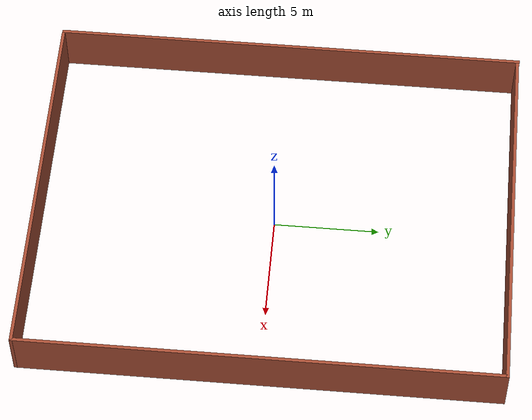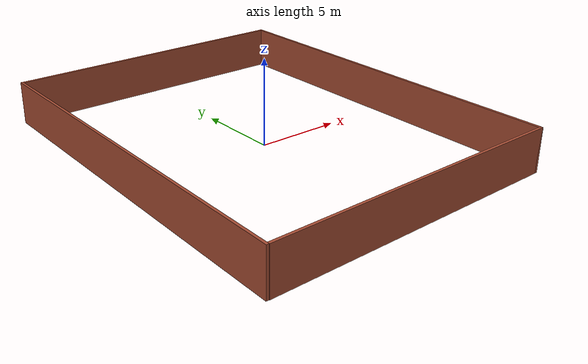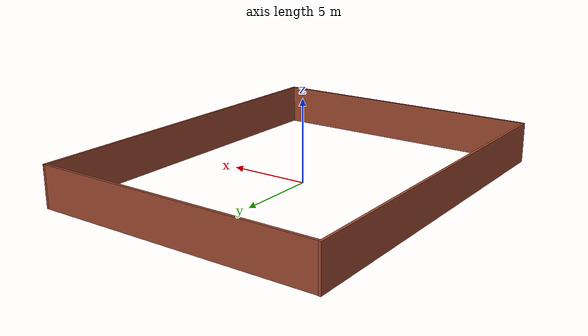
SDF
<?xml version='1.0'?>
<sdf version='1.6'>
  <model name='open_hall'>
    <link name='Wall_10'>
      <pose frame=''>8.675 0 0 0 0 -1.5708</pose>
      <self_collide>0</self_collide>
      <enable_wind>0</enable_wind>
      <kinematic>0</kinematic>
      <visual name='Wall_10_Visual'>
        <pose frame=''>0 0 1.25 0 -0 0</pose>
        <geometry>
          <box>
            <size>22.5 0.15 2.5</size>
          </box>
        </geometry>
        <material>
          <script>
            <uri>file://media/materials/scripts/gazebo.material</uri>
            <name>Gazebo/Bricks</name>
          </script>
          <ambient>1 1 1 1</ambient>
        </material>
        <meta>
          <layer>0</layer>
        </meta>
        <transparency>0</transparency>
        <cast_shadows>1</cast_shadows>
      </visual>
      <collision name='Wall_10_Collision'>
        <laser_retro>0</laser_retro>
        <max_contacts>10</max_contacts>
        <pose frame=''>0 0 1.25 0 -0 0</pose>
        <geometry>
          <box>
            <size>22.5 0.15 2.5</size>
          </box>
        </geometry>
        <surface>
          <friction>
            <ode>
              <mu>1</mu>
              <mu2>1</mu2>
              <fdir1>0 0 0</fdir1>
              <slip1>0</slip1>
              <slip2>0</slip2>
            </ode>
            <torsional>
              <coefficient>1</coefficient>
              <patch_radius>0</patch_radius>
              <surface_radius>0</surface_radius>
              <use_patch_radius>1</use_patch_radius>
              <ode>
                <slip>0</slip>
              </ode>
            </torsional>
          </friction>
          <bounce>
            <restitution_coefficient>0</restitution_coefficient>
            <threshold>1e+06</threshold>
          </bounce>
          <contact>
            <collide_without_contact>0</collide_without_contact>
            <collide_without_contact_bitmask>1</collide_without_contact_bitmask>
            <collide_bitmask>1</collide_bitmask>
            <ode>
              <soft_cfm>0</soft_cfm>
              <soft_erp>0.2</soft_erp>
              <kp>1e+13</kp>
              <kd>1</kd>
              <max_vel>0.01</max_vel>
              <min_depth>0</min_depth>
            </ode>
            <bullet>
              <split_impulse>1</split_impulse>
              <split_impulse_penetration_threshold>-0.01</split_impulse_penetration_threshold>
              <soft_cfm>0</soft_cfm>
              <soft_erp>0.2</soft_erp>
              <kp>1e+13</kp>
              <kd>1</kd>
            </bullet>
          </contact>
        </surface>
      </collision>
    </link>
    <link name='Wall_3'>
      <pose frame=''>0 -11.175 0 0 -0 0</pose>
      <self_collide>0</self_collide>
      <enable_wind>0</enable_wind>
      <kinematic>0</kinematic>
      <visual name='Wall_3_Visual'>
        <pose frame=''>0 0 1.25 0 -0 0</pose>
        <geometry>
          <box>
            <size>17.5 0.15 2.5</size>
          </box>
        </geometry>
        <material>
          <script>
            <uri>file://media/materials/scripts/gazebo.material</uri>
            <name>Gazebo/Bricks</name>
          </script>
          <ambient>1 1 1 1</ambient>
        </material>
        <meta>
          <layer>0</layer>
        </meta>
        <transparency>0</transparency>
        <cast_shadows>1</cast_shadows>
      </visual>
      <collision name='Wall_3_Collision'>
        <laser_retro>0</laser_retro>
        <max_contacts>10</max_contacts>
        <pose frame=''>0 0 1.25 0 -0 0</pose>
        <geometry>
          <box>
            <size>17.5 0.15 2.5</size>
          </box>
        </geometry>
        <surface>
          <friction>
            <ode>
              <mu>1</mu>
              <mu2>1</mu2>
              <fdir1>0 0 0</fdir1>
              <slip1>0</slip1>
              <slip2>0</slip2>
            </ode>
            <torsional>
              <coefficient>1</coefficient>
              <patch_radius>0</patch_radius>
              <surface_radius>0</surface_radius>
              <use_patch_radius>1</use_patch_radius>
              <ode>
                <slip>0</slip>
              </ode>
            </torsional>
          </friction>
          <bounce>
            <restitution_coefficient>0</restitution_coefficient>
            <threshold>1e+06</threshold>
          </bounce>
          <contact>
            <collide_without_contact>0</collide_without_contact>
            <collide_without_contact_bitmask>1</collide_without_contact_bitmask>
            <collide_bitmask>1</collide_bitmask>
            <ode>
              <soft_cfm>0</soft_cfm>
              <soft_erp>0.2</soft_erp>
              <kp>1e+13</kp>
              <kd>1</kd>
              <max_vel>0.01</max_vel>
              <min_depth>0</min_depth>
            </ode>
            <bullet>
              <split_impulse>1</split_impulse>
              <split_impulse_penetration_threshold>-0.01</split_impulse_penetration_threshold>
              <soft_cfm>0</soft_cfm>
              <soft_erp>0.2</soft_erp>
              <kp>1e+13</kp>
              <kd>1</kd>
            </bullet>
          </contact>
        </surface>
      </collision>
    </link>
    <link name='Wall_5'>
      <pose frame=''>-8.82566 0.022174 0 0 -0 1.5708</pose>
      <self_collide>0</self_collide>
      <enable_wind>0</enable_wind>
      <kinematic>0</kinematic>
      <visual name='Wall_5_Visual'>
        <pose frame=''>0 0 1.25 0 -0 0</pose>
        <geometry>
          <box>
            <size>22.5 0.15 2.5</size>
          </box>
        </geometry>
        <material>
          <script>
            <uri>file://media/materials/scripts/gazebo.material</uri>
            <name>Gazebo/Bricks</name>
          </script>
          <ambient>1 1 1 1</ambient>
        </material>
        <meta>
          <layer>0</layer>
        </meta>
        <transparency>0</transparency>
        <cast_shadows>1</cast_shadows>
      </visual>
      <collision name='Wall_5_Collision'>
        <laser_retro>0</laser_retro>
        <max_contacts>10</max_contacts>
        <pose frame=''>0 0 1.25 0 -0 0</pose>
        <geometry>
          <box>
            <size>22.5 0.15 2.5</size>
          </box>
        </geometry>
        <surface>
          <friction>
            <ode>
              <mu>1</mu>
              <mu2>1</mu2>
              <fdir1>0 0 0</fdir1>
              <slip1>0</slip1>
              <slip2>0</slip2>
            </ode>
            <torsional>
              <coefficient>1</coefficient>
              <patch_radius>0</patch_radius>
              <surface_radius>0</surface_radius>
              <use_patch_radius>1</use_patch_radius>
              <ode>
                <slip>0</slip>
              </ode>
            </torsional>
          </friction>
          <bounce>
            <restitution_coefficient>0</restitution_coefficient>
            <threshold>1e+06</threshold>
          </bounce>
          <contact>
            <collide_without_contact>0</collide_without_contact>
            <collide_without_contact_bitmask>1</collide_without_contact_bitmask>
            <collide_bitmask>1</collide_bitmask>
            <ode>
              <soft_cfm>0</soft_cfm>
              <soft_erp>0.2</soft_erp>
              <kp>1e+13</kp>
              <kd>1</kd>
              <max_vel>0.01</max_vel>
              <min_depth>0</min_depth>
            </ode>
            <bullet>
              <split_impulse>1</split_impulse>
              <split_impulse_penetration_threshold>-0.01</split_impulse_penetration_threshold>
              <soft_cfm>0</soft_cfm>
              <soft_erp>0.2</soft_erp>
              <kp>1e+13</kp>
              <kd>1</kd>
            </bullet>
          </contact>
        </surface>
      </collision>
    </link>
    <link name='Wall_6'>
      <pose frame=''>0 11.175 0 0 -0 0</pose>
      <self_collide>0</self_collide>
      <enable_wind>0</enable_wind>
      <kinematic>0</kinematic>
      <visual name='Wall_6_Visual'>
        <pose frame=''>0 0 1.25 0 -0 0</pose>
        <geometry>
          <box>
            <size>17.5 0.15 2.5</size>
          </box>
        </geometry>
        <material>
          <script>
            <uri>file://media/materials/scripts/gazebo.material</uri>
            <name>Gazebo/Bricks</name>
          </script>
          <ambient>1 1 1 1</ambient>
        </material>
        <meta>
          <layer>0</layer>
        </meta>
        <transparency>0</transparency>
        <cast_shadows>1</cast_shadows>
      </visual>
      <collision name='Wall_6_Collision'>
        <laser_retro>0</laser_retro>
        <max_contacts>10</max_contacts>
        <pose frame=''>0 0 1.25 0 -0 0</pose>
        <geometry>
          <box>
            <size>17.5 0.15 2.5</size>
          </box>
        </geometry>
        <surface>
          <friction>
            <ode>
              <mu>1</mu>
              <mu2>1</mu2>
              <fdir1>0 0 0</fdir1>
              <slip1>0</slip1>
              <slip2>0</slip2>
            </ode>
            <torsional>
              <coefficient>1</coefficient>
              <patch_radius>0</patch_radius>
              <surface_radius>0</surface_radius>
              <use_patch_radius>1</use_patch_radius>
              <ode>
                <slip>0</slip>
              </ode>
            </torsional>
          </friction>
          <bounce>
            <restitution_coefficient>0</restitution_coefficient>
            <threshold>1e+06</threshold>
          </bounce>
          <contact>
            <collide_without_contact>0</collide_without_contact>
            <collide_without_contact_bitmask>1</collide_without_contact_bitmask>
            <collide_bitmask>1</collide_bitmask>
            <ode>
              <soft_cfm>0</soft_cfm>
              <soft_erp>0.2</soft_erp>
              <kp>1e+13</kp>
              <kd>1</kd>
              <max_vel>0.01</max_vel>
              <min_depth>0</min_depth>
            </ode>
            <bullet>
              <split_impulse>1</split_impulse>
              <split_impulse_penetration_threshold>-0.01</split_impulse_penetration_threshold>
              <soft_cfm>0</soft_cfm>
              <soft_erp>0.2</soft_erp>
              <kp>1e+13</kp>
              <kd>1</kd>
            </bullet>
          </contact>
        </surface>
      </collision>
    </link>
    <static>1</static>
    <allow_auto_disable>1</allow_auto_disable>
  </model>
</sdf>
